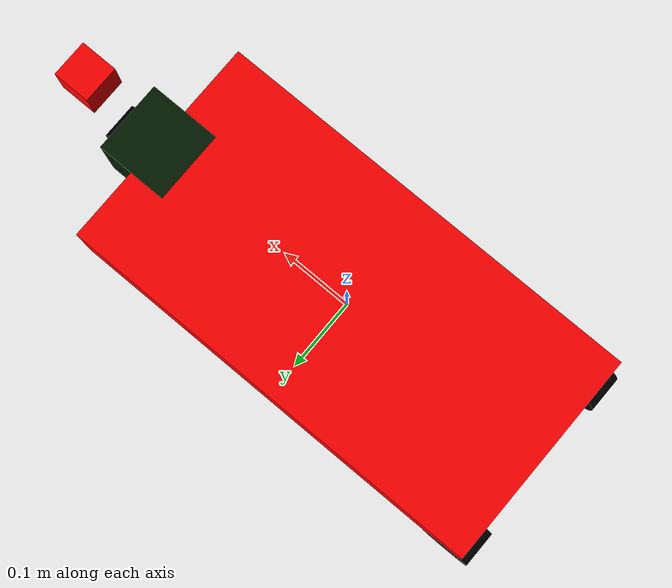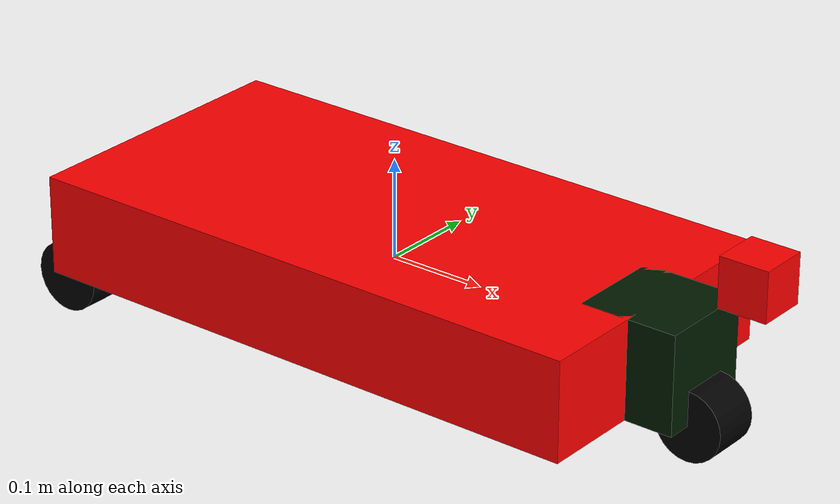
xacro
<?xml version="1.0"?>

<robot name="custom_robot">

    <link name="base_link">

        <visual>

            <geometry>

                <box size="0.6 0.3 0.1"/>

            </geometry>

            <material name="red">

                <color rgba="1 0.0 0.0 1"/>

            </material>

        </visual>

        <collision>

            <geometry>

                <box size="0.6 0.3 0.1"/>

            </geometry>

        </collision>

        <inertial>

            <mass value="1.0"/>

            <inertia ixx="0.015" ixy="0" ixz="0" iyy="0.0375" iyz="0.0" izz="0.0375"/>

        </inertial>

    </link>

    <link name="front_caster_of_wheel">

        <visual>

            <geometry>

                <box size="0.1 0.1 0.1"/>

            </geometry>

            <material name="green">

                <color rgba="0.0 0.1 0.0 1"/>

            </material>

        </visual>

        <collision>

            <geometry>

                <box size="0.1 0.1 0.1"/>

            </geometry>

        </collision>

        <inertial>

            <mass value="0.1"/>

            <inertia ixx="0.00083" ixy="0" ixz="0" iyy="0.00083" iyz="0.0" izz="0.000167"/>

        </inertial>

    </link>

    <joint name="front_caster_of_wheel_joint" type="continuous">

       <axis xyz="0.0 0.0 1"/>

       <parent link="base_link"/>

       <child link="front_caster_of_wheel"/>

       <origin xyz="0.3 0.0 0.0" rpy="0.0 0.0 0.0"/>

    </joint>

    <link name="front_wheel">

        <visual>

            <geometry>

                <cylinder radius="0.035" length="0.05"/>

            </geometry>

            <material name="black">

            </material>

        </visual>

        <collision>

            <geometry>

                <cylinder radius="0.035" length="0.05"/>

            </geometry>

        </collision>

        <inertial>

            <mass value="0.1"/>

            <inertia ixx="5.1458e-5" ixy="0" ixz="0" iyy="5.1458e-5" iyz="0.0" izz="6.125e-5"/>

        </inertial>

    </link>

    <joint name="front_wheel_joint" type="continuous">

        <axis xyz="0.0 0.0 1"/>

        <parent link="front_caster_of_wheel"/>

        <child link="front_wheel"/>

        <origin xyz="0.05 0.0 -0.05" rpy="-1.5708 0.0 0.0"/>

    </joint>

<link name="right_wheel">

        <visual>

            <geometry>

                <cylinder radius="0.035" length="0.05"/>

            </geometry>

            <material name="black">

                <color rgba="0.0 0.0 0.0 1"/>

            </material>

        </visual>

        <collision>

            <geometry>

                <cylinder radius="0.035" length="0.05"/>

            </geometry>

        </collision>

        <inertial>

            <mass value="0.1"/>

            <inertia ixx="5.1458e-5" ixy="0" ixz="0" iyy="5.1458e-5" iyz="0.0" izz="6.125e-5"/>        </inertial>

    </link>

    <joint name="right_wheel_joint" type="continuous">

        <axis xyz="0.0 0.0 1"/>

        <parent link="base_link"/>

        <child link="right_wheel"/>

        <origin xyz="-0.2825 -0.125 -0.05" rpy="-1.5708 0.0 0.0"/>

    </joint>

    <link name="left_wheel">

        <visual>

            <geometry>

                <cylinder radius="0.035" length="0.05"/>

            </geometry>

            <material name="black">

                <color rgba="0.0 0.0 0.0 1"/>

            </material>

        </visual>

        <collision>

            <geometry>

                <cylinder radius="0.035" length="0.05"/>

            </geometry>

        </collision>

        <inertial>

            <mass value="0.1"/>

            <inertia ixx="5.1458e-5" ixy="0" ixz="0" iyy="5.1458e-5" iyz="0.0" izz="6.125e-5"/>        </inertial>

    </link>

    <joint name="left_wheel_joint" type="continuous">

        <axis xyz="0.0 0.0 1"/>

        <parent link="base_link"/>

        <child link="left_wheel"/>

        <origin xyz="-0.2825 0.125 -0.05" rpy="-1.5708 0.0 0.0"/>

    </joint>

<link name="camera_link">
    <collision>
      <origin xyz="0.0 0 0" rpy="0.0 0 0"/>
      <geometry>
        <box size="0.05 0.05 0.05"/>
      </geometry>
    </collision>

    <visual>
      <origin xyz="0.0 0 0" rpy="0.0 0 0"/>
      <geometry>
        <box size="0.05 0.05 0.05"/>
      </geometry>
      <material name="red"/>
    </visual>

    <inertial>
      <mass value="1e-5" />
      <origin xyz="0.0 0 0" rpy="0.0 0 0"/>
      <inertia ixx="1e-6" ixy="0" ixz="0" iyy="1e-6" iyz="0" izz="1e-6" />
    </inertial>
  </link>
  <joint name="laser_scanner_joint" type="fixed">

        <axis xyz="0.4 1 0.0"/>

        <parent link="base_link"/>

        <child link="camera_link"/>

        <origin xyz="0.4 0.0 0.1" rpy="0.0 0.0 0.0"/>

    </joint>

    <gazebo>

        <plugin name="differential_drive_controller"

                filename="libgazebo_ros_diff_drive.so">

            <leftJoint>left_wheel_joint</leftJoint>

            <rightJoint>right_wheel_joint</rightJoint>

            <legacyMode>false</legacyMode>

            <robotBaseFrame>base_link</robotBaseFrame>

            <wheelSeparation>0.25</wheelSeparation>

            <wheelDiameter>0.07</wheelDiameter>

            <publishWheelJointState>true</publishWheelJointState>

        </plugin>

    </gazebo>

       <gazebo>

        <plugin name="joint_state_publisher"

                filename="libgazebo_ros_joint_state_publisher.so">

            <jointName>front_caster_of_wheel_joint, front_wheel_joint</jointName>

        </plugin>

    </gazebo>

  <gazebo reference="camera_link">
            <sensor type="camera" name="camera">
                <update_rate>30.0</update_rate>
                <camera name="head">
                    <horizontal_fov>1.3962634</horizontal_fov>
                    <image>
                        <width>800</width>
                        <height>600</height>
                        <format>R8G8B8</format>
                    </image>
                    <clip>
                        <near>0.02</near>
                        <far>300</far>
                    </clip>
                    <noise>
                        <type>gaussian</type>
                        <mean>0.0</mean>
                        <stddev>0.007</stddev>
                    </noise>
                </camera>
                <plugin name="camera_controller" filename="libgazebo_ros_camera.so">
                    <alwaysOn>true</alwaysOn>
                    <updateRate>0.0</updateRate>
                    <cameraName>iRobot/camera</cameraName>
                    <imageTopicName>image_raw</imageTopicName>
                    <cameraInfoTopicName>camera_info</cameraInfoTopicName>
                    <frameName>camera_link</frameName>
                    <hackBaseline>0.07</hackBaseline>
                    <distortionK1>0.0</distortionK1>
                    <distortionK2>0.0</distortionK2>
                    <distortionK3>0.0</distortionK3>
                    <distortionT1>0.0</distortionT1>
                    <distortionT2>0.0</distortionT2>
                </plugin>
            </sensor>
    </gazebo>
    </robot>
